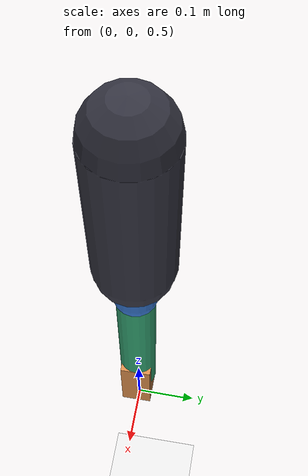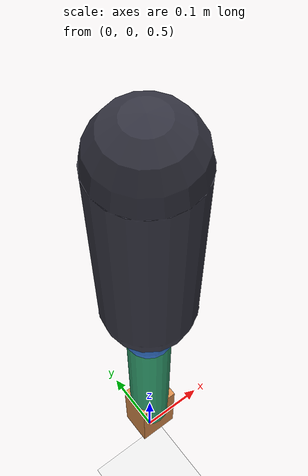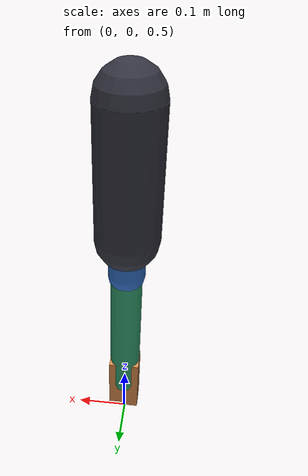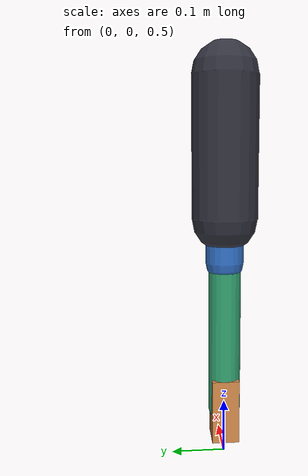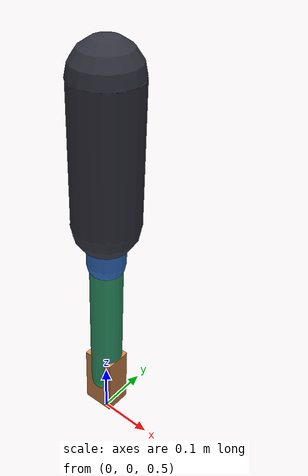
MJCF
<mujoco model="textile_tensegrity_arm_module">
  <compiler angle="degree" autolimits="true"/>
  <option timestep="0.002" integrator="RK4" gravity="0 0 -9.81"/>

  <default>
    <joint damping="0.6" armature="0.01"/>
    <geom contype="1" conaffinity="1" friction="0.8 0.05 0.02" density="900"/>
    <motor ctrllimited="true" ctrlrange="-1 1"/>
  </default>

  <worldbody>
    <geom name="floor" type="plane" size="2 2 0.1" rgba="0.9 0.9 0.9 1"/>

    <body name="torso_anchor" pos="0 0 0.95">
      <geom name="torso" type="capsule" fromto="0 0 0 0 0 0.25" size="0.06" rgba="0.2 0.2 0.25 1"/>

      <body name="upper_arm" pos="0 0 0.22">
        <joint name="shoulder_pitch" type="hinge" axis="0 1 0" range="-70 90"/>
        <geom name="upper_arm_geom" type="capsule" fromto="0 0 0 0 0 -0.30" size="0.035" rgba="0.2 0.45 0.8 1"/>

        <body name="forearm" pos="0 0 -0.30">
          <joint name="elbow_flex" type="hinge" axis="0 1 0" range="0 140"/>
          <geom name="forearm_geom" type="capsule" fromto="0 0 0 0 0 -0.28" size="0.03" rgba="0.2 0.65 0.45 1"/>

          <body name="hand" pos="0 0 -0.28">
            <geom name="hand_geom" type="box" size="0.03 0.025 0.06" rgba="0.85 0.55 0.3 1"/>
            <site name="ee" pos="0 0 -0.06" size="0.01" rgba="1 0 0 1"/>
          </body>
        </body>
      </body>
    </body>
  </worldbody>

  <tendon>
    <fixed name="t_shoulder_flex">
      <joint joint="shoulder_pitch" coef="1"/>
    </fixed>
    <fixed name="t_shoulder_ext">
      <joint joint="shoulder_pitch" coef="-1"/>
    </fixed>

    <fixed name="t_elbow_flex">
      <joint joint="elbow_flex" coef="1"/>
    </fixed>
    <fixed name="t_elbow_ext">
      <joint joint="elbow_flex" coef="-1"/>
    </fixed>
  </tendon>

  <actuator>
    <motor name="m_shoulder_flex" tendon="t_shoulder_flex" gear="35"/>
    <motor name="m_shoulder_ext" tendon="t_shoulder_ext" gear="35"/>
    <motor name="m_elbow_flex" tendon="t_elbow_flex" gear="30"/>
    <motor name="m_elbow_ext" tendon="t_elbow_ext" gear="30"/>
  </actuator>

  <sensor>
    <jointpos name="s_shoulder_pos" joint="shoulder_pitch"/>
    <jointvel name="s_shoulder_vel" joint="shoulder_pitch"/>
    <jointpos name="s_elbow_pos" joint="elbow_flex"/>
    <jointvel name="s_elbow_vel" joint="elbow_flex"/>

    <tendonpos name="s_tendon_shoulder_flex" tendon="t_shoulder_flex"/>
    <tendonpos name="s_tendon_shoulder_ext" tendon="t_shoulder_ext"/>
    <tendonpos name="s_tendon_elbow_flex" tendon="t_elbow_flex"/>
    <tendonpos name="s_tendon_elbow_ext" tendon="t_elbow_ext"/>

    <actuatorfrc name="s_act_shoulder_flex" actuator="m_shoulder_flex"/>
    <actuatorfrc name="s_act_shoulder_ext" actuator="m_shoulder_ext"/>
    <actuatorfrc name="s_act_elbow_flex" actuator="m_elbow_flex"/>
    <actuatorfrc name="s_act_elbow_ext" actuator="m_elbow_ext"/>
  </sensor>

  <keyframe>
    <key name="home" qpos="0 0" ctrl="0 0 0 0"/>
  </keyframe>
</mujoco>
